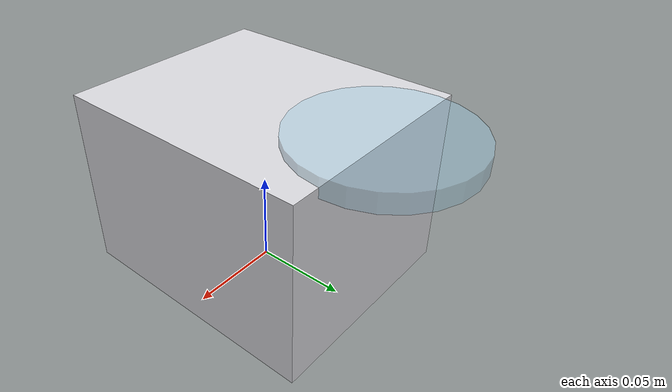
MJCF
<?xml version="1.0" encoding="utf-8"?>
<mujoco model="moisture_analyzer">
  <compiler angle="radian" autolimits="true"/>
  <default>
    <default class="body"><geom contype="1" conaffinity="1"/></default>
  </default>
  <worldbody>
    <body name="base">
      <geom type="box" size="0.06 0.07 0.05" pos="0 0 0.05" rgba="0.85 0.85 0.87 1" class="body"/>
      <geom type="box" size="0.018 0.0035000000000000005 0.0125" pos="-0.03 -0.06300000000000001 0.07500000000000001" rgba="0.9 0.7 0.1 1" class="body"/>
      <body name="lid" pos="0 0.07 0.10">
        <joint name="lid_joint" type="hinge" axis="1 0 0" range="0 1.6" damping="0.3" frictionloss="0.3"/>
  <geom type="cylinder" size="0.045 0.005" pos="0 0 0" rgba="0.6 0.8 0.9 0.4" class="body"/>
      </body>
    </body>
  </worldbody>
</mujoco>
